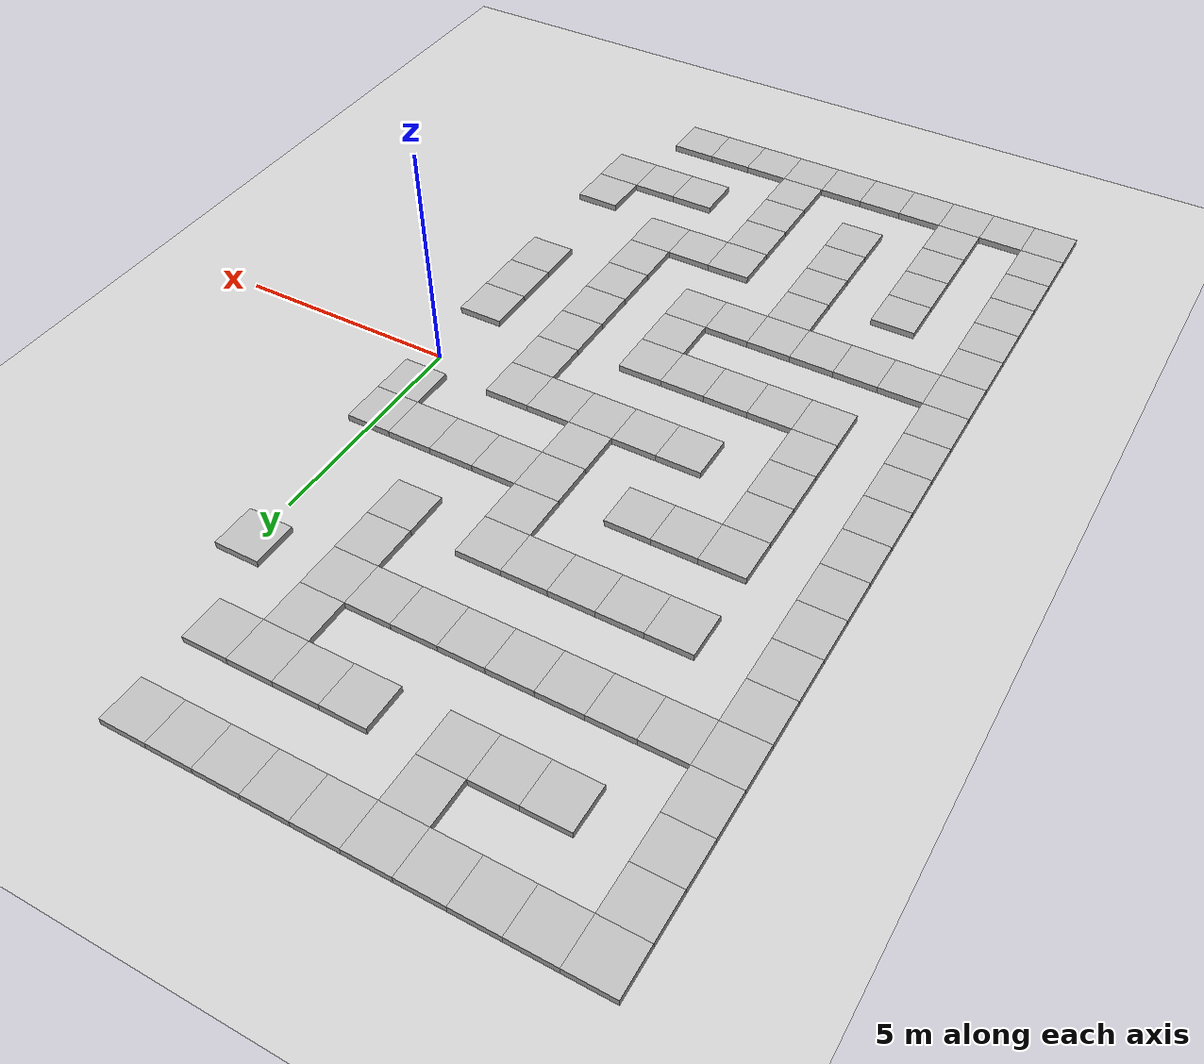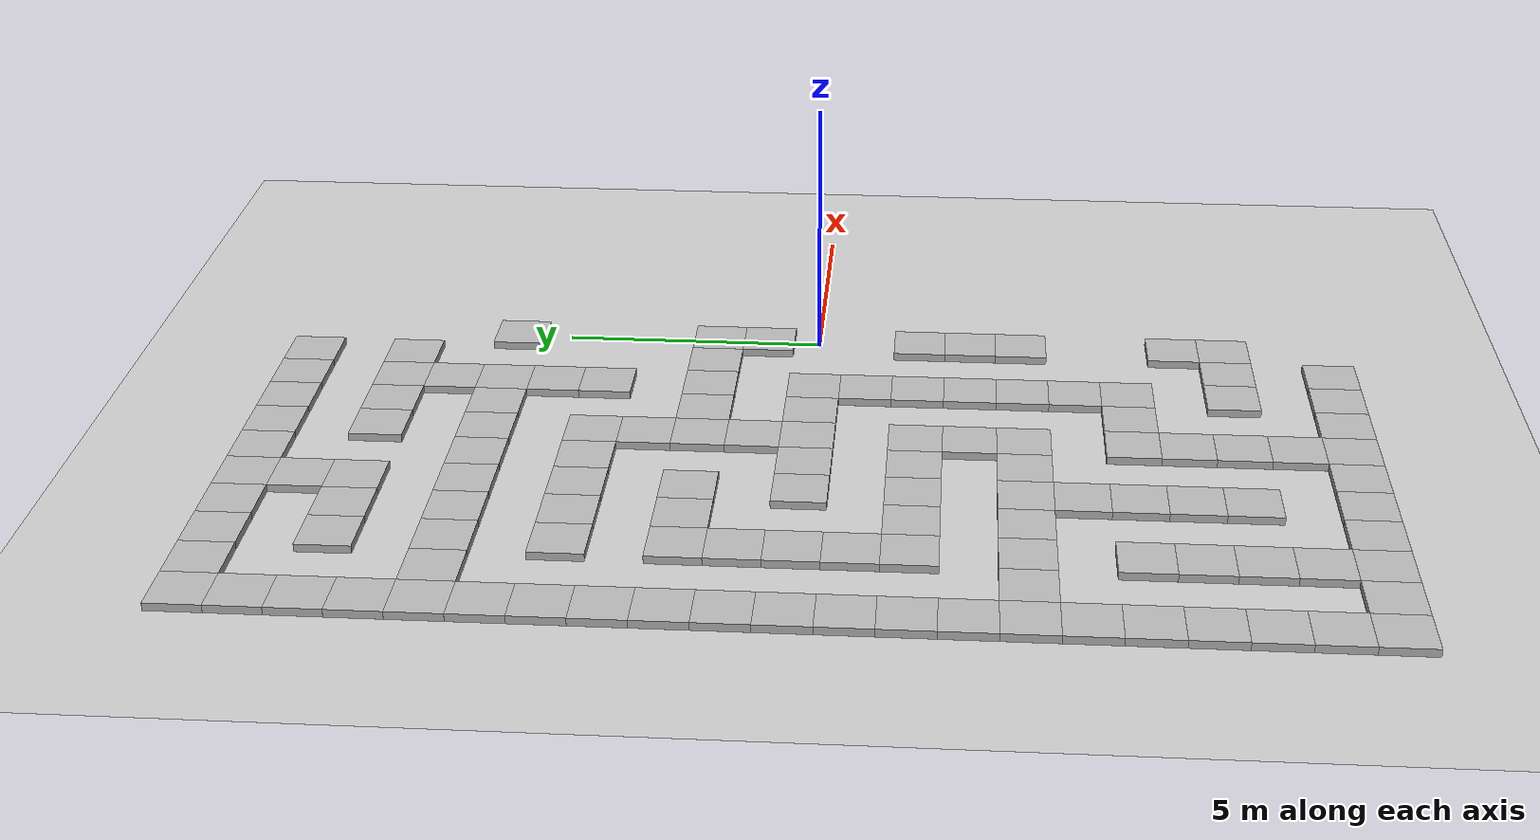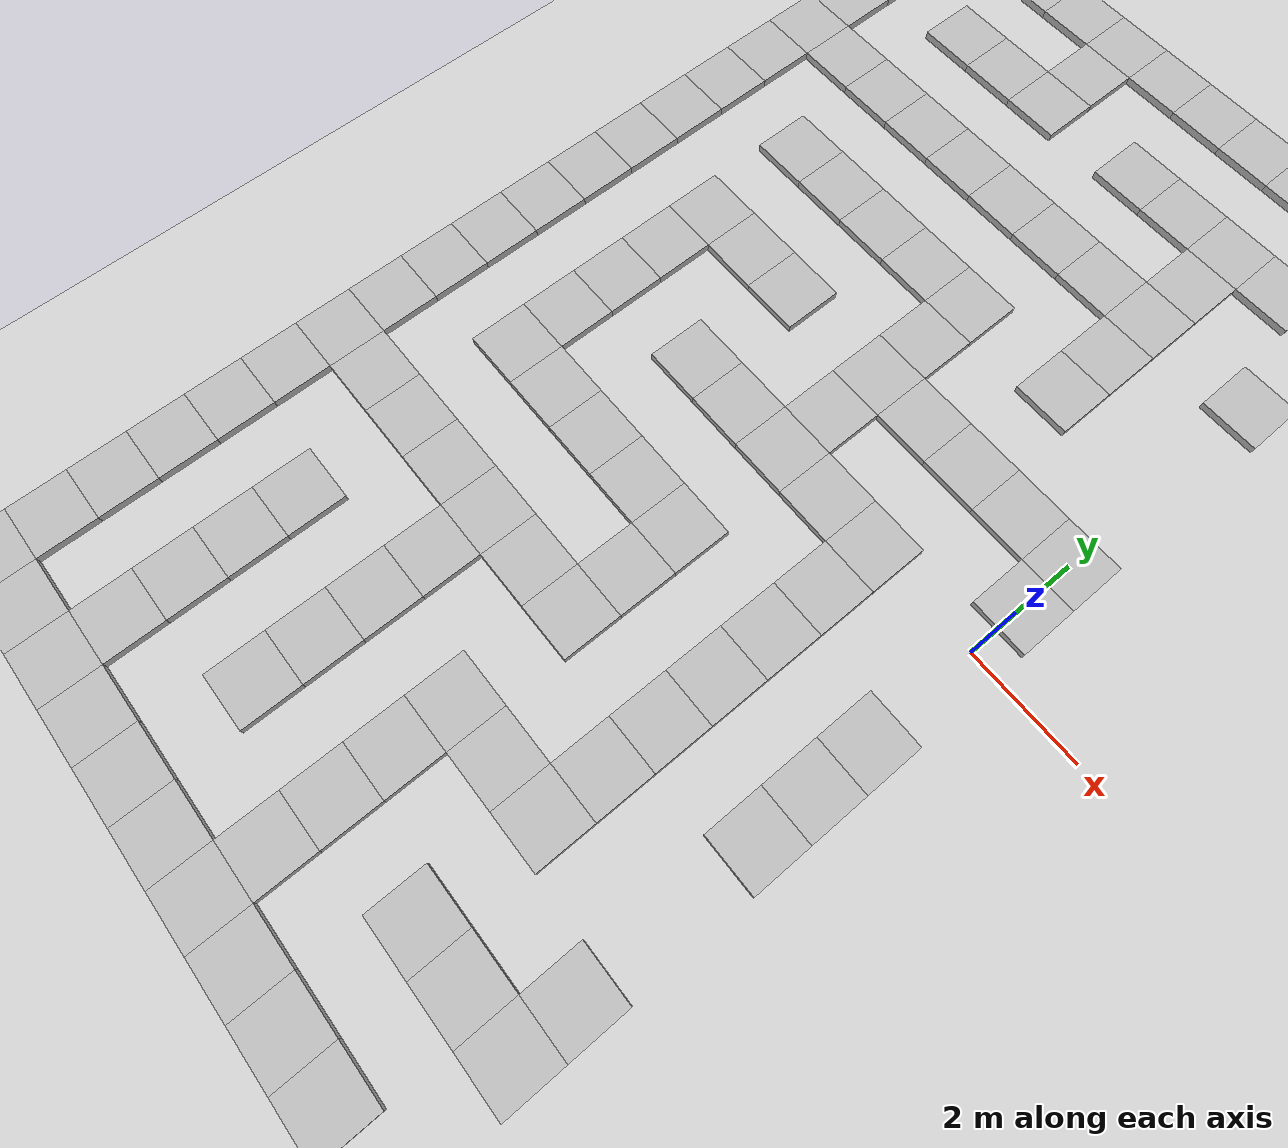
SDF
<sdf version="1.8">
 <world name="custom">
  <model name="ground_plane">
   <static>1</static>
   <link name="link">
    <collision name="collision">
     <geometry><plane><normal>0 0 1</normal><size>100 100</size></plane></geometry>
    </collision>
    <visual name="visual">
     <geometry><plane><normal>0 0 1</normal><size>100 100</size></plane></geometry>
     <material>
      <ambient>0.8 0.8 0.8 1</ambient>
      <diffuse>0.8 0.8 0.8 1</diffuse>
      <specular>0.8 0.8 0.8 1</specular>
     </material>
     <plugin name="__default__" filename="__default__"/>
    </visual>
   </link>
   <plugin name="__default__" filename="__default__"/>
  </model>
  <model name="border"><pose>0 0 1 0 0 0</pose><static>true</static></model>
  <model name="obstacles">
   <pose>0 0 0.5 0 0 0</pose>
   <static>true</static>
   <link name="wall1">
    <pose>-2 -10 -0.5 0 0 0</pose>
    <collision name="wall1_collision"><geometry><box><size>1 1 0.25</size></box></geometry></collision>
    <visual name="wall1_visual"><geometry><box><size>1 1 0.25</size></box></geometry></visual>
   </link>
   <link name="wall3">
    <pose>-2 -1 -0.5 0 0 0</pose>
    <collision name="wall3_collision"><geometry><box><size>1 1 0.25</size></box></geometry></collision>
    <visual name="wall3_visual"><geometry><box><size>1 1 0.25</size></box></geometry></visual>
   </link>
   <link name="wall4">
    <pose>-10 -5 -0.5 0 0 0</pose>
    <collision name="wall4_collision"><geometry><box><size>1 1 0.25</size></box></geometry></collision>
    <visual name="wall4_visual"><geometry><box><size>1 1 0.25</size></box></geometry></visual>
   </link>
   <link name="wall5">
    <pose>-2 8 -0.5 0 0 0</pose>
    <collision name="wall5_collision"><geometry><box><size>1 1 0.25</size></box></geometry></collision>
    <visual name="wall5_visual"><geometry><box><size>1 1 0.25</size></box></geometry></visual>
   </link>
   <link name="wall7">
    <pose>-10 4 -0.5 0 0 0</pose>
    <collision name="wall7_collision"><geometry><box><size>1 1 0.25</size></box></geometry></collision>
    <visual name="wall7_visual"><geometry><box><size>1 1 0.25</size></box></geometry></visual>
   </link>
   <link name="wall9">
    <pose>-6 -8 -0.5 0 0 0</pose>
    <collision name="wall9_collision"><geometry><box><size>1 1 0.25</size></box></geometry></collision>
    <visual name="wall9_visual"><geometry><box><size>1 1 0.25</size></box></geometry></visual>
   </link>
   <link name="wall10">
    <pose>-7 -4 -0.5 0 0 0</pose>
    <collision name="wall10_collision"><geometry><box><size>1 1 0.25</size></box></geometry></collision>
    <visual name="wall10_visual"><geometry><box><size>1 1 0.25</size></box></geometry></visual>
   </link>
   <link name="wall13">
    <pose>-3 2 -0.5 0 0 0</pose>
    <collision name="wall13_collision"><geometry><box><size>1 1 0.25</size></box></geometry></collision>
    <visual name="wall13_visual"><geometry><box><size>1 1 0.25</size></box></geometry></visual>
   </link>
   <link name="wall15">
    <pose>-2 -6 -0.5 0 0 0</pose>
    <collision name="wall15_collision"><geometry><box><size>1 1 0.25</size></box></geometry></collision>
    <visual name="wall15_visual"><geometry><box><size>1 1 0.25</size></box></geometry></visual>
   </link>
   <link name="wall16">
    <pose>-10 -10 -0.5 0 0 0</pose>
    <collision name="wall16_collision"><geometry><box><size>1 1 0.25</size></box></geometry></collision>
    <visual name="wall16_visual"><geometry><box><size>1 1 0.25</size></box></geometry></visual>
   </link>
   <link name="wall18">
    <pose>-10 -1 -0.5 0 0 0</pose>
    <collision name="wall18_collision"><geometry><box><size>1 1 0.25</size></box></geometry></collision>
    <visual name="wall18_visual"><geometry><box><size>1 1 0.25</size></box></geometry></visual>
   </link>
   <link name="wall22">
    <pose>-3 6 -0.5 0 0 0</pose>
    <collision name="wall22_collision"><geometry><box><size>1 1 0.25</size></box></geometry></collision>
    <visual name="wall22_visual"><geometry><box><size>1 1 0.25</size></box></geometry></visual>
   </link>
   <link name="wall25">
    <pose>0 -2 -0.5 0 0 0</pose>
    <collision name="wall25_collision"><geometry><box><size>1 1 0.25</size></box></geometry></collision>
    <visual name="wall25_visual"><geometry><box><size>1 1 0.25</size></box></geometry></visual>
   </link>
   <link name="wall27">
    <pose>-7 4 -0.5 0 0 0</pose>
    <collision name="wall27_collision"><geometry><box><size>1 1 0.25</size></box></geometry></collision>
    <visual name="wall27_visual"><geometry><box><size>1 1 0.25</size></box></geometry></visual>
   </link>
   <link name="wall32">
    <pose>0 -7 -0.5 0 0 0</pose>
    <collision name="wall32_collision"><geometry><box><size>1 1 0.25</size></box></geometry></collision>
    <visual name="wall32_visual"><geometry><box><size>1 1 0.25</size></box></geometry></visual>
   </link>
   <link name="wall33">
    <pose>0 2 -0.5 0 0 0</pose>
    <collision name="wall33_collision"><geometry><box><size>1 1 0.25</size></box></geometry></collision>
    <visual name="wall33_visual"><geometry><box><size>1 1 0.25</size></box></geometry></visual>
   </link>
   <link name="wall34">
    <pose>-8 -2 -0.5 0 0 0</pose>
    <collision name="wall34_collision"><geometry><box><size>1 1 0.25</size></box></geometry></collision>
    <visual name="wall34_visual"><geometry><box><size>1 1 0.25</size></box></geometry></visual>
   </link>
   <link name="wall35">
    <pose>-7 -10 -0.5 0 0 0</pose>
    <collision name="wall35_collision"><geometry><box><size>1 1 0.25</size></box></geometry></collision>
    <visual name="wall35_visual"><geometry><box><size>1 1 0.25</size></box></geometry></visual>
   </link>
   <link name="wall37">
    <pose>-7 8 -0.5 0 0 0</pose>
    <collision name="wall37_collision"><geometry><box><size>1 1 0.25</size></box></geometry></collision>
    <visual name="wall37_visual"><geometry><box><size>1 1 0.25</size></box></geometry></visual>
   </link>
   <link name="wall40">
    <pose>-4 0 -0.5 0 0 0</pose>
    <collision name="wall40_collision"><geometry><box><size>1 1 0.25</size></box></geometry></collision>
    <visual name="wall40_visual"><geometry><box><size>1 1 0.25</size></box></geometry></visual>
   </link>
   <link name="wall41">
    <pose>0 -3 -0.5 0 0 0</pose>
    <collision name="wall41_collision"><geometry><box><size>1 1 0.25</size></box></geometry></collision>
    <visual name="wall41_visual"><geometry><box><size>1 1 0.25</size></box></geometry></visual>
   </link>
   <link name="wall42">
    <pose>-8 -7 -0.5 0 0 0</pose>
    <collision name="wall42_collision"><geometry><box><size>1 1 0.25</size></box></geometry></collision>
    <visual name="wall42_visual"><geometry><box><size>1 1 0.25</size></box></geometry></visual>
   </link>
   <link name="wall43">
    <pose>0 6 -0.5 0 0 0</pose>
    <collision name="wall43_collision"><geometry><box><size>1 1 0.25</size></box></geometry></collision>
    <visual name="wall43_visual"><geometry><box><size>1 1 0.25</size></box></geometry></visual>
   </link>
   <link name="wall44">
    <pose>-8 2 -0.5 0 0 0</pose>
    <collision name="wall44_collision"><geometry><box><size>1 1 0.25</size></box></geometry></collision>
    <visual name="wall44_visual"><geometry><box><size>1 1 0.25</size></box></geometry></visual>
   </link>
   <link name="wall46">
    <pose>-1 10 -0.5 0 0 0</pose>
    <collision name="wall46_collision"><geometry><box><size>1 1 0.25</size></box></geometry></collision>
    <visual name="wall46_visual"><geometry><box><size>1 1 0.25</size></box></geometry></visual>
   </link>
   <link name="wall47">
    <pose>-4 4 -0.5 0 0 0</pose>
    <collision name="wall47_collision"><geometry><box><size>1 1 0.25</size></box></geometry></collision>
    <visual name="wall47_visual"><geometry><box><size>1 1 0.25</size></box></geometry></visual>
   </link>
   <link name="wall48">
    <pose>0 -8 -0.5 0 0 0</pose>
    <collision name="wall48_collision"><geometry><box><size>1 1 0.25</size></box></geometry></collision>
    <visual name="wall48_visual"><geometry><box><size>1 1 0.25</size></box></geometry></visual>
   </link>
   <link name="wall49">
    <pose>0 1 -0.5 0 0 0</pose>
    <collision name="wall49_collision"><geometry><box><size>1 1 0.25</size></box></geometry></collision>
    <visual name="wall49_visual"><geometry><box><size>1 1 0.25</size></box></geometry></visual>
   </link>
   <link name="wall50">
    <pose>-8 6 -0.5 0 0 0</pose>
    <collision name="wall50_collision"><geometry><box><size>1 1 0.25</size></box></geometry></collision>
    <visual name="wall50_visual"><geometry><box><size>1 1 0.25</size></box></geometry></visual>
   </link>
   <link name="wall52">
    <pose>-5 -2 -0.5 0 0 0</pose>
    <collision name="wall52_collision"><geometry><box><size>1 1 0.25</size></box></geometry></collision>
    <visual name="wall52_visual"><geometry><box><size>1 1 0.25</size></box></geometry></visual>
   </link>
   <link name="wall53">
    <pose>-4 -10 -0.5 0 0 0</pose>
    <collision name="wall53_collision"><geometry><box><size>1 1 0.25</size></box></geometry></collision>
    <visual name="wall53_visual"><geometry><box><size>1 1 0.25</size></box></geometry></visual>
   </link>
   <link name="wall54">
    <pose>-4 8 -0.5 0 0 0</pose>
    <collision name="wall54_collision"><geometry><box><size>1 1 0.25</size></box></geometry></collision>
    <visual name="wall54_visual"><geometry><box><size>1 1 0.25</size></box></geometry></visual>
   </link>
   <link name="wall56">
    <pose>0 -4 -0.5 0 0 0</pose>
    <collision name="wall56_collision"><geometry><box><size>1 1 0.25</size></box></geometry></collision>
    <visual name="wall56_visual"><geometry><box><size>1 1 0.25</size></box></geometry></visual>
   </link>
   <link name="wall57">
    <pose>-8 -8 -0.5 0 0 0</pose>
    <collision name="wall57_collision"><geometry><box><size>1 1 0.25</size></box></geometry></collision>
    <visual name="wall57_visual"><geometry><box><size>1 1 0.25</size></box></geometry></visual>
   </link>
   <link name="wall58">
    <pose>-8 1 -0.5 0 0 0</pose>
    <collision name="wall58_collision"><geometry><box><size>1 1 0.25</size></box></geometry></collision>
    <visual name="wall58_visual"><geometry><box><size>1 1 0.25</size></box></geometry></visual>
   </link>
   <link name="wall60">
    <pose>-4 -6 -0.5 0 0 0</pose>
    <collision name="wall60_collision"><geometry><box><size>1 1 0.25</size></box></geometry></collision>
    <visual name="wall60_visual"><geometry><box><size>1 1 0.25</size></box></geometry></visual>
   </link>
   <link name="wall61">
    <pose>-4 3 -0.5 0 0 0</pose>
    <collision name="wall61_collision"><geometry><box><size>1 1 0.25</size></box></geometry></collision>
    <visual name="wall61_visual"><geometry><box><size>1 1 0.25</size></box></geometry></visual>
   </link>
   <link name="wall68">
    <pose>-5 6 -0.5 0 0 0</pose>
    <collision name="wall68_collision"><geometry><box><size>1 1 0.25</size></box></geometry></collision>
    <visual name="wall68_visual"><geometry><box><size>1 1 0.25</size></box></geometry></visual>
   </link>
   <link name="wall73">
    <pose>-6 10 -0.5 0 0 0</pose>
    <collision name="wall73_collision"><geometry><box><size>1 1 0.25</size></box></geometry></collision>
    <visual name="wall73_visual"><geometry><box><size>1 1 0.25</size></box></geometry></visual>
   </link>
   <link name="wall77">
    <pose>-1 -10 -0.5 0 0 0</pose>
    <collision name="wall77_collision"><geometry><box><size>1 1 0.25</size></box></geometry></collision>
    <visual name="wall77_visual"><geometry><box><size>1 1 0.25</size></box></geometry></visual>
   </link>
   <link name="wall78">
    <pose>-10 8 -0.5 0 0 0</pose>
    <collision name="wall78_collision"><geometry><box><size>1 1 0.25</size></box></geometry></collision>
    <visual name="wall78_visual"><geometry><box><size>1 1 0.25</size></box></geometry></visual>
   </link>
   <link name="wall83">
    <pose>-6 -4 -0.5 0 0 0</pose>
    <collision name="wall83_collision"><geometry><box><size>1 1 0.25</size></box></geometry></collision>
    <visual name="wall83_visual"><geometry><box><size>1 1 0.25</size></box></geometry></visual>
   </link>
   <link name="wall84">
    <pose>-9 -10 -0.5 0 0 0</pose>
    <collision name="wall84_collision"><geometry><box><size>1 1 0.25</size></box></geometry></collision>
    <visual name="wall84_visual"><geometry><box><size>1 1 0.25</size></box></geometry></visual>
   </link>
   <link name="wall88">
    <pose>-5 -4 -0.5 0 0 0</pose>
    <collision name="wall88_collision"><geometry><box><size>1 1 0.25</size></box></geometry></collision>
    <visual name="wall88_visual"><geometry><box><size>1 1 0.25</size></box></geometry></visual>
   </link>
   <link name="wall90">
    <pose>-2 -2 -0.5 0 0 0</pose>
    <collision name="wall90_collision"><geometry><box><size>1 1 0.25</size></box></geometry></collision>
    <visual name="wall90_visual"><geometry><box><size>1 1 0.25</size></box></geometry></visual>
   </link>
   <link name="wall91">
    <pose>-10 -6 -0.5 0 0 0</pose>
    <collision name="wall91_collision"><geometry><box><size>1 1 0.25</size></box></geometry></collision>
    <visual name="wall91_visual"><geometry><box><size>1 1 0.25</size></box></geometry></visual>
   </link>
   <link name="wall92">
    <pose>-2 7 -0.5 0 0 0</pose>
    <collision name="wall92_collision"><geometry><box><size>1 1 0.25</size></box></geometry></collision>
    <visual name="wall92_visual"><geometry><box><size>1 1 0.25</size></box></geometry></visual>
   </link>
   <link name="wall93">
    <pose>-10 3 -0.5 0 0 0</pose>
    <collision name="wall93_collision"><geometry><box><size>1 1 0.25</size></box></geometry></collision>
    <visual name="wall93_visual"><geometry><box><size>1 1 0.25</size></box></geometry></visual>
   </link>
   <link name="wall98">
    <pose>-6 0 -0.5 0 0 0</pose>
    <collision name="wall98_collision"><geometry><box><size>1 1 0.25</size></box></geometry></collision>
    <visual name="wall98_visual"><geometry><box><size>1 1 0.25</size></box></geometry></visual>
   </link>
   <link name="wall99">
    <pose>-6 9 -0.5 0 0 0</pose>
    <collision name="wall99_collision"><geometry><box><size>1 1 0.25</size></box></geometry></collision>
    <visual name="wall99_visual"><geometry><box><size>1 1 0.25</size></box></geometry></visual>
   </link>
   <link name="wall101">
    <pose>-3 10 -0.5 0 0 0</pose>
    <collision name="wall101_collision"><geometry><box><size>1 1 0.25</size></box></geometry></collision>
    <visual name="wall101_visual"><geometry><box><size>1 1 0.25</size></box></geometry></visual>
   </link>
   <link name="wall103">
    <pose>-2 2 -0.5 0 0 0</pose>
    <collision name="wall103_collision"><geometry><box><size>1 1 0.25</size></box></geometry></collision>
    <visual name="wall103_visual"><geometry><box><size>1 1 0.25</size></box></geometry></visual>
   </link>
   <link name="wall104">
    <pose>-10 -2 -0.5 0 0 0</pose>
    <collision name="wall104_collision"><geometry><box><size>1 1 0.25</size></box></geometry></collision>
    <visual name="wall104_visual"><geometry><box><size>1 1 0.25</size></box></geometry></visual>
   </link>
   <link name="wall106">
    <pose>-10 7 -0.5 0 0 0</pose>
    <collision name="wall106_collision"><geometry><box><size>1 1 0.25</size></box></geometry></collision>
    <visual name="wall106_visual"><geometry><box><size>1 1 0.25</size></box></geometry></visual>
   </link>
   <link name="wall111">
    <pose>-6 -5 -0.5 0 0 0</pose>
    <collision name="wall111_collision"><geometry><box><size>1 1 0.25</size></box></geometry></collision>
    <visual name="wall111_visual"><geometry><box><size>1 1 0.25</size></box></geometry></visual>
   </link>
   <link name="wall112">
    <pose>-6 4 -0.5 0 0 0</pose>
    <collision name="wall112_collision"><geometry><box><size>1 1 0.25</size></box></geometry></collision>
    <visual name="wall112_visual"><geometry><box><size>1 1 0.25</size></box></geometry></visual>
   </link>
   <link name="wall115">
    <pose>-2 -3 -0.5 0 0 0</pose>
    <collision name="wall115_collision"><geometry><box><size>1 1 0.25</size></box></geometry></collision>
    <visual name="wall115_visual"><geometry><box><size>1 1 0.25</size></box></geometry></visual>
   </link>
   <link name="wall116">
    <pose>-10 -7 -0.5 0 0 0</pose>
    <collision name="wall116_collision"><geometry><box><size>1 1 0.25</size></box></geometry></collision>
    <visual name="wall116_visual"><geometry><box><size>1 1 0.25</size></box></geometry></visual>
   </link>
   <link name="wall117">
    <pose>-2 6 -0.5 0 0 0</pose>
    <collision name="wall117_collision"><geometry><box><size>1 1 0.25</size></box></geometry></collision>
    <visual name="wall117_visual"><geometry><box><size>1 1 0.25</size></box></geometry></visual>
   </link>
   <link name="wall118">
    <pose>-10 2 -0.5 0 0 0</pose>
    <collision name="wall118_collision"><geometry><box><size>1 1 0.25</size></box></geometry></collision>
    <visual name="wall118_visual"><geometry><box><size>1 1 0.25</size></box></geometry></visual>
   </link>
   <link name="wall120">
    <pose>-6 -10 -0.5 0 0 0</pose>
    <collision name="wall120_collision"><geometry><box><size>1 1 0.25</size></box></geometry></collision>
    <visual name="wall120_visual"><geometry><box><size>1 1 0.25</size></box></geometry></visual>
   </link>
   <link name="wall123">
    <pose>-3 0 -0.5 0 0 0</pose>
    <collision name="wall123_collision"><geometry><box><size>1 1 0.25</size></box></geometry></collision>
    <visual name="wall123_visual"><geometry><box><size>1 1 0.25</size></box></geometry></visual>
   </link>
   <link name="wall125">
    <pose>-2 -8 -0.5 0 0 0</pose>
    <collision name="wall125_collision"><geometry><box><size>1 1 0.25</size></box></geometry></collision>
    <visual name="wall125_visual"><geometry><box><size>1 1 0.25</size></box></geometry></visual>
   </link>
   <link name="wall126">
    <pose>-10 -3 -0.5 0 0 0</pose>
    <collision name="wall126_collision"><geometry><box><size>1 1 0.25</size></box></geometry></collision>
    <visual name="wall126_visual"><geometry><box><size>1 1 0.25</size></box></geometry></visual>
   </link>
   <link name="wall127">
    <pose>-10 6 -0.5 0 0 0</pose>
    <collision name="wall127_collision"><geometry><box><size>1 1 0.25</size></box></geometry></collision>
    <visual name="wall127_visual"><geometry><box><size>1 1 0.25</size></box></geometry></visual>
   </link>
   <link name="wall130">
    <pose>-7 -2 -0.5 0 0 0</pose>
    <collision name="wall130_collision"><geometry><box><size>1 1 0.25</size></box></geometry></collision>
    <visual name="wall130_visual"><geometry><box><size>1 1 0.25</size></box></geometry></visual>
   </link>
   <link name="wall136">
    <pose>-10 -8 -0.5 0 0 0</pose>
    <collision name="wall136_collision"><geometry><box><size>1 1 0.25</size></box></geometry></collision>
    <visual name="wall136_visual"><geometry><box><size>1 1 0.25</size></box></geometry></visual>
   </link>
   <link name="wall139">
    <pose>-8 10 -0.5 0 0 0</pose>
    <collision name="wall139_collision"><geometry><box><size>1 1 0.25</size></box></geometry></collision>
    <visual name="wall139_visual"><geometry><box><size>1 1 0.25</size></box></geometry></visual>
   </link>
   <link name="wall140">
    <pose>-7 2 -0.5 0 0 0</pose>
    <collision name="wall140_collision"><geometry><box><size>1 1 0.25</size></box></geometry></collision>
    <visual name="wall140_visual"><geometry><box><size>1 1 0.25</size></box></geometry></visual>
   </link>
   <link name="wall142">
    <pose>-3 -10 -0.5 0 0 0</pose>
    <collision name="wall142_collision"><geometry><box><size>1 1 0.25</size></box></geometry></collision>
    <visual name="wall142_visual"><geometry><box><size>1 1 0.25</size></box></geometry></visual>
   </link>
   <link name="wall147">
    <pose>-8 -4 -0.5 0 0 0</pose>
    <collision name="wall147_collision"><geometry><box><size>1 1 0.25</size></box></geometry></collision>
    <visual name="wall147_visual"><geometry><box><size>1 1 0.25</size></box></geometry></visual>
   </link>
   <link name="wall149">
    <pose>-7 6 -0.5 0 0 0</pose>
    <collision name="wall149_collision"><geometry><box><size>1 1 0.25</size></box></geometry></collision>
    <visual name="wall149_visual"><geometry><box><size>1 1 0.25</size></box></geometry></visual>
   </link>
   <link name="wall151">
    <pose>-3 -6 -0.5 0 0 0</pose>
    <collision name="wall151_collision"><geometry><box><size>1 1 0.25</size></box></geometry></collision>
    <visual name="wall151_visual"><geometry><box><size>1 1 0.25</size></box></geometry></visual>
   </link>
   <link name="wall153">
    <pose>-4 -2 -0.5 0 0 0</pose>
    <collision name="wall153_collision"><geometry><box><size>1 1 0.25</size></box></geometry></collision>
    <visual name="wall153_visual"><geometry><box><size>1 1 0.25</size></box></geometry></visual>
   </link>
   <link name="wall155">
    <pose>-8 -9 -0.5 0 0 0</pose>
    <collision name="wall155_collision"><geometry><box><size>1 1 0.25</size></box></geometry></collision>
    <visual name="wall155_visual"><geometry><box><size>1 1 0.25</size></box></geometry></visual>
   </link>
   <link name="wall157">
    <pose>-8 0 -0.5 0 0 0</pose>
    <collision name="wall157_collision"><geometry><box><size>1 1 0.25</size></box></geometry></collision>
    <visual name="wall157_visual"><geometry><box><size>1 1 0.25</size></box></geometry></visual>
   </link>
   <link name="wall159">
    <pose>-5 10 -0.5 0 0 0</pose>
    <collision name="wall159_collision"><geometry><box><size>1 1 0.25</size></box></geometry></collision>
    <visual name="wall159_visual"><geometry><box><size>1 1 0.25</size></box></geometry></visual>
   </link>
   <link name="wall160">
    <pose>-1 8 -0.5 0 0 0</pose>
    <collision name="wall160_collision"><geometry><box><size>1 1 0.25</size></box></geometry></collision>
    <visual name="wall160_visual"><geometry><box><size>1 1 0.25</size></box></geometry></visual>
   </link>
   <link name="wall161">
    <pose>-4 -7 -0.5 0 0 0</pose>
    <collision name="wall161_collision"><geometry><box><size>1 1 0.25</size></box></geometry></collision>
    <visual name="wall161_visual"><geometry><box><size>1 1 0.25</size></box></geometry></visual>
   </link>
   <link name="wall162">
    <pose>-4 2 -0.5 0 0 0</pose>
    <collision name="wall162_collision"><geometry><box><size>1 1 0.25</size></box></geometry></collision>
    <visual name="wall162_visual"><geometry><box><size>1 1 0.25</size></box></geometry></visual>
   </link>
   <link name="wall165">
    <pose>-8 4 -0.5 0 0 0</pose>
    <collision name="wall165_collision"><geometry><box><size>1 1 0.25</size></box></geometry></collision>
    <visual name="wall165_visual"><geometry><box><size>1 1 0.25</size></box></geometry></visual>
   </link>
   <link name="wall169">
    <pose>-4 -3 -0.5 0 0 0</pose>
    <collision name="wall169_collision"><geometry><box><size>1 1 0.25</size></box></geometry></collision>
    <visual name="wall169_visual"><geometry><box><size>1 1 0.25</size></box></geometry></visual>
   </link>
   <link name="wall170">
    <pose>-4 6 -0.5 0 0 0</pose>
    <collision name="wall170_collision"><geometry><box><size>1 1 0.25</size></box></geometry></collision>
    <visual name="wall170_visual"><geometry><box><size>1 1 0.25</size></box></geometry></visual>
   </link>
   <link name="wall172">
    <pose>-8 -10 -0.5 0 0 0</pose>
    <collision name="wall172_collision"><geometry><box><size>1 1 0.25</size></box></geometry></collision>
    <visual name="wall172_visual"><geometry><box><size>1 1 0.25</size></box></geometry></visual>
   </link>
   <link name="wall174">
    <pose>-8 -1 -0.5 0 0 0</pose>
    <collision name="wall174_collision"><geometry><box><size>1 1 0.25</size></box></geometry></collision>
    <visual name="wall174_visual"><geometry><box><size>1 1 0.25</size></box></geometry></visual>
   </link>
   <link name="wall176">
    <pose>-8 8 -0.5 0 0 0</pose>
    <collision name="wall176_collision"><geometry><box><size>1 1 0.25</size></box></geometry></collision>
    <visual name="wall176_visual"><geometry><box><size>1 1 0.25</size></box></geometry></visual>
   </link>
   <link name="wall179">
    <pose>-5 0 -0.5 0 0 0</pose>
    <collision name="wall179_collision"><geometry><box><size>1 1 0.25</size></box></geometry></collision>
    <visual name="wall179_visual"><geometry><box><size>1 1 0.25</size></box></geometry></visual>
   </link>
   <link name="wall180">
    <pose>-4 -8 -0.5 0 0 0</pose>
    <collision name="wall180_collision"><geometry><box><size>1 1 0.25</size></box></geometry></collision>
    <visual name="wall180_visual"><geometry><box><size>1 1 0.25</size></box></geometry></visual>
   </link>
   <link name="wall181">
    <pose>-4 1 -0.5 0 0 0</pose>
    <collision name="wall181_collision"><geometry><box><size>1 1 0.25</size></box></geometry></collision>
    <visual name="wall181_visual"><geometry><box><size>1 1 0.25</size></box></geometry></visual>
   </link>
   <link name="wall182">
    <pose>-4 10 -0.5 0 0 0</pose>
    <collision name="wall182_collision"><geometry><box><size>1 1 0.25</size></box></geometry></collision>
    <visual name="wall182_visual"><geometry><box><size>1 1 0.25</size></box></geometry></visual>
   </link>
   <link name="wall184">
    <pose>-8 -6 -0.5 0 0 0</pose>
    <collision name="wall184_collision"><geometry><box><size>1 1 0.25</size></box></geometry></collision>
    <visual name="wall184_visual"><geometry><box><size>1 1 0.25</size></box></geometry></visual>
   </link>
   <link name="wall188">
    <pose>-5 4 -0.5 0 0 0</pose>
    <collision name="wall188_collision"><geometry><box><size>1 1 0.25</size></box></geometry></collision>
    <visual name="wall188_visual"><geometry><box><size>1 1 0.25</size></box></geometry></visual>
   </link>
   <link name="wall190">
    <pose>-1 2 -0.5 0 0 0</pose>
    <collision name="wall190_collision"><geometry><box><size>1 1 0.25</size></box></geometry></collision>
    <visual name="wall190_visual"><geometry><box><size>1 1 0.25</size></box></geometry></visual>
   </link>
   <link name="wall191">
    <pose>-4 -4 -0.5 0 0 0</pose>
    <collision name="wall191_collision"><geometry><box><size>1 1 0.25</size></box></geometry></collision>
    <visual name="wall191_visual"><geometry><box><size>1 1 0.25</size></box></geometry></visual>
   </link>
   <link name="wall194">
    <pose>-6 8 -0.5 0 0 0</pose>
    <collision name="wall194_collision"><geometry><box><size>1 1 0.25</size></box></geometry></collision>
    <visual name="wall194_visual"><geometry><box><size>1 1 0.25</size></box></geometry></visual>
   </link>
   <link name="wall196">
    <pose>-5 -10 -0.5 0 0 0</pose>
    <collision name="wall196_collision"><geometry><box><size>1 1 0.25</size></box></geometry></collision>
    <visual name="wall196_visual"><geometry><box><size>1 1 0.25</size></box></geometry></visual>
   </link>
   <link name="wall197">
    <pose>-4 -9 -0.5 0 0 0</pose>
    <collision name="wall197_collision"><geometry><box><size>1 1 0.25</size></box></geometry></collision>
    <visual name="wall197_visual"><geometry><box><size>1 1 0.25</size></box></geometry></visual>
   </link>
   <link name="wall198">
    <pose>-2 10 -0.5 0 0 0</pose>
    <collision name="wall198_collision"><geometry><box><size>1 1 0.25</size></box></geometry></collision>
    <visual name="wall198_visual"><geometry><box><size>1 1 0.25</size></box></geometry></visual>
   </link>
   <link name="wall203">
    <pose>-6 -6 -0.5 0 0 0</pose>
    <collision name="wall203_collision"><geometry><box><size>1 1 0.25</size></box></geometry></collision>
    <visual name="wall203_visual"><geometry><box><size>1 1 0.25</size></box></geometry></visual>
   </link>
   <link name="wall206">
    <pose>-9 6 -0.5 0 0 0</pose>
    <collision name="wall206_collision"><geometry><box><size>1 1 0.25</size></box></geometry></collision>
    <visual name="wall206_visual"><geometry><box><size>1 1 0.25</size></box></geometry></visual>
   </link>
   <link name="wall209">
    <pose>-1 -8 -0.5 0 0 0</pose>
    <collision name="wall209_collision"><geometry><box><size>1 1 0.25</size></box></geometry></collision>
    <visual name="wall209_visual"><geometry><box><size>1 1 0.25</size></box></geometry></visual>
   </link>
   <link name="wall210">
    <pose>-2 -4 -0.5 0 0 0</pose>
    <collision name="wall210_collision"><geometry><box><size>1 1 0.25</size></box></geometry></collision>
    <visual name="wall210_visual"><geometry><box><size>1 1 0.25</size></box></geometry></visual>
   </link>
   <link name="wall211">
    <pose>-2 5 -0.5 0 0 0</pose>
    <collision name="wall211_collision"><geometry><box><size>1 1 0.25</size></box></geometry></collision>
    <visual name="wall211_visual"><geometry><box><size>1 1 0.25</size></box></geometry></visual>
   </link>
   <link name="wall212">
    <pose>-10 1 -0.5 0 0 0</pose>
    <collision name="wall212_collision"><geometry><box><size>1 1 0.25</size></box></geometry></collision>
    <visual name="wall212_visual"><geometry><box><size>1 1 0.25</size></box></geometry></visual>
   </link>
   <link name="wall213">
    <pose>-10 10 -0.5 0 0 0</pose>
    <collision name="wall213_collision"><geometry><box><size>1 1 0.25</size></box></geometry></collision>
    <visual name="wall213_visual"><geometry><box><size>1 1 0.25</size></box></geometry></visual>
   </link>
   <link name="wall218">
    <pose>-6 -2 -0.5 0 0 0</pose>
    <collision name="wall218_collision"><geometry><box><size>1 1 0.25</size></box></geometry></collision>
    <visual name="wall218_visual"><geometry><box><size>1 1 0.25</size></box></geometry></visual>
   </link>
   <link name="wall220">
    <pose>-9 10 -0.5 0 0 0</pose>
    <collision name="wall220_collision"><geometry><box><size>1 1 0.25</size></box></geometry></collision>
    <visual name="wall220_visual"><geometry><box><size>1 1 0.25</size></box></geometry></visual>
   </link>
   <link name="wall221">
    <pose>-3 8 -0.5 0 0 0</pose>
    <collision name="wall221_collision"><geometry><box><size>1 1 0.25</size></box></geometry></collision>
    <visual name="wall221_visual"><geometry><box><size>1 1 0.25</size></box></geometry></visual>
   </link>
   <link name="wall222">
    <pose>-2 0 -0.5 0 0 0</pose>
    <collision name="wall222_collision"><geometry><box><size>1 1 0.25</size></box></geometry></collision>
    <visual name="wall222_visual"><geometry><box><size>1 1 0.25</size></box></geometry></visual>
   </link>
   <link name="wall223">
    <pose>-10 -4 -0.5 0 0 0</pose>
    <collision name="wall223_collision"><geometry><box><size>1 1 0.25</size></box></geometry></collision>
    <visual name="wall223_visual"><geometry><box><size>1 1 0.25</size></box></geometry></visual>
   </link>
   <link name="wall224">
    <pose>-10 5 -0.5 0 0 0</pose>
    <collision name="wall224_collision"><geometry><box><size>1 1 0.25</size></box></geometry></collision>
    <visual name="wall224_visual"><geometry><box><size>1 1 0.25</size></box></geometry></visual>
   </link>
   <link name="wall227">
    <pose>-6 -7 -0.5 0 0 0</pose>
    <collision name="wall227_collision"><geometry><box><size>1 1 0.25</size></box></geometry></collision>
    <visual name="wall227_visual"><geometry><box><size>1 1 0.25</size></box></geometry></visual>
   </link>
   <link name="wall229">
    <pose>-6 2 -0.5 0 0 0</pose>
    <collision name="wall229_collision"><geometry><box><size>1 1 0.25</size></box></geometry></collision>
    <visual name="wall229_visual"><geometry><box><size>1 1 0.25</size></box></geometry></visual>
   </link>
   <link name="wall230">
    <pose>-9 -4 -0.5 0 0 0</pose>
    <collision name="wall230_collision"><geometry><box><size>1 1 0.25</size></box></geometry></collision>
    <visual name="wall230_visual"><geometry><box><size>1 1 0.25</size></box></geometry></visual>
   </link>
   <link name="wall233">
    <pose>-2 -5 -0.5 0 0 0</pose>
    <collision name="wall233_collision"><geometry><box><size>1 1 0.25</size></box></geometry></collision>
    <visual name="wall233_visual"><geometry><box><size>1 1 0.25</size></box></geometry></visual>
   </link>
   <link name="wall234">
    <pose>-10 -9 -0.5 0 0 0</pose>
    <collision name="wall234_collision"><geometry><box><size>1 1 0.25</size></box></geometry></collision>
    <visual name="wall234_visual"><geometry><box><size>1 1 0.25</size></box></geometry></visual>
   </link>
   <link name="wall235">
    <pose>-2 4 -0.5 0 0 0</pose>
    <collision name="wall235_collision"><geometry><box><size>1 1 0.25</size></box></geometry></collision>
    <visual name="wall235_visual"><geometry><box><size>1 1 0.25</size></box></geometry></visual>
   </link>
   <link name="wall236">
    <pose>-10 0 -0.5 0 0 0</pose>
    <collision name="wall236_collision"><geometry><box><size>1 1 0.25</size></box></geometry></collision>
    <visual name="wall236_visual"><geometry><box><size>1 1 0.25</size></box></geometry></visual>
   </link>
   <link name="wall237">
    <pose>-10 9 -0.5 0 0 0</pose>
    <collision name="wall237_collision"><geometry><box><size>1 1 0.25</size></box></geometry></collision>
    <visual name="wall237_visual"><geometry><box><size>1 1 0.25</size></box></geometry></visual>
   </link>
   <link name="wall240">
    <pose>-6 6 -0.5 0 0 0</pose>
    <collision name="wall240_collision"><geometry><box><size>1 1 0.25</size></box></geometry></collision>
    <visual name="wall240_visual"><geometry><box><size>1 1 0.25</size></box></geometry></visual>
   </link>
   <link name="wall241">
    <pose>-7 10 -0.5 0 0 0</pose>
    <collision name="wall241_collision"><geometry><box><size>1 1 0.25</size></box></geometry></collision>
    <visual name="wall241_visual"><geometry><box><size>1 1 0.25</size></box></geometry></visual>
   </link>
  </model>
 </world>
</sdf>
